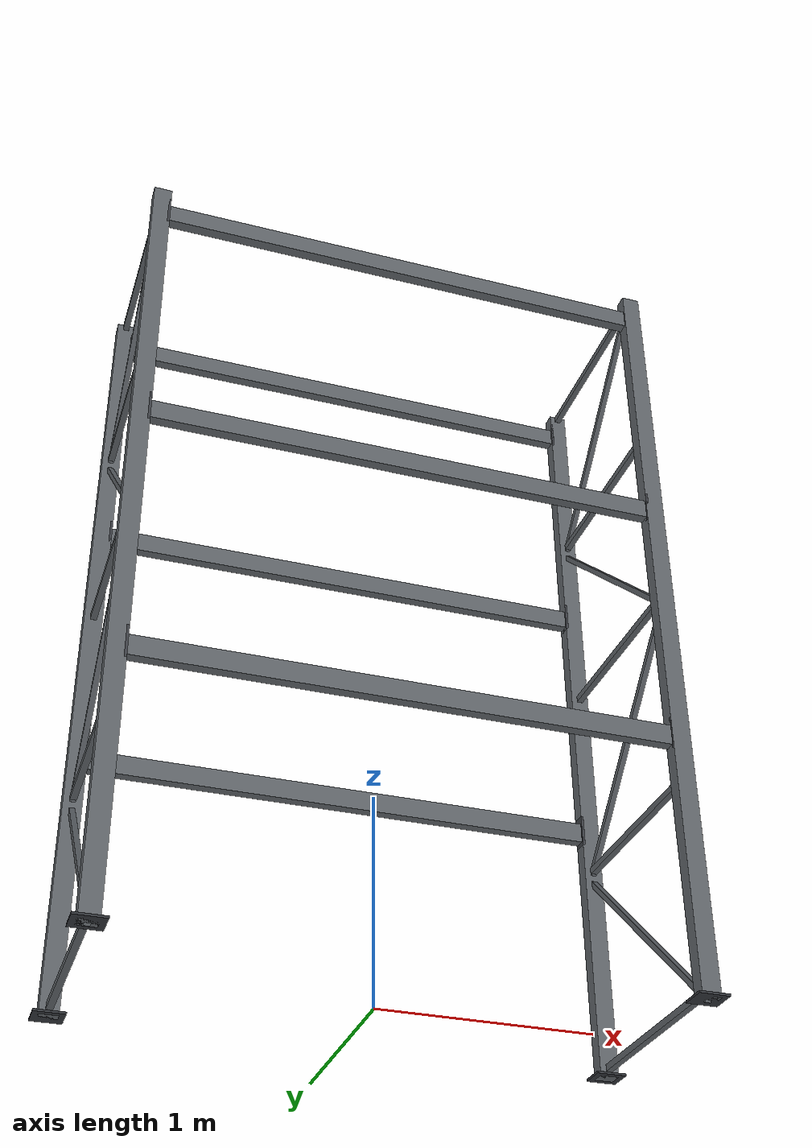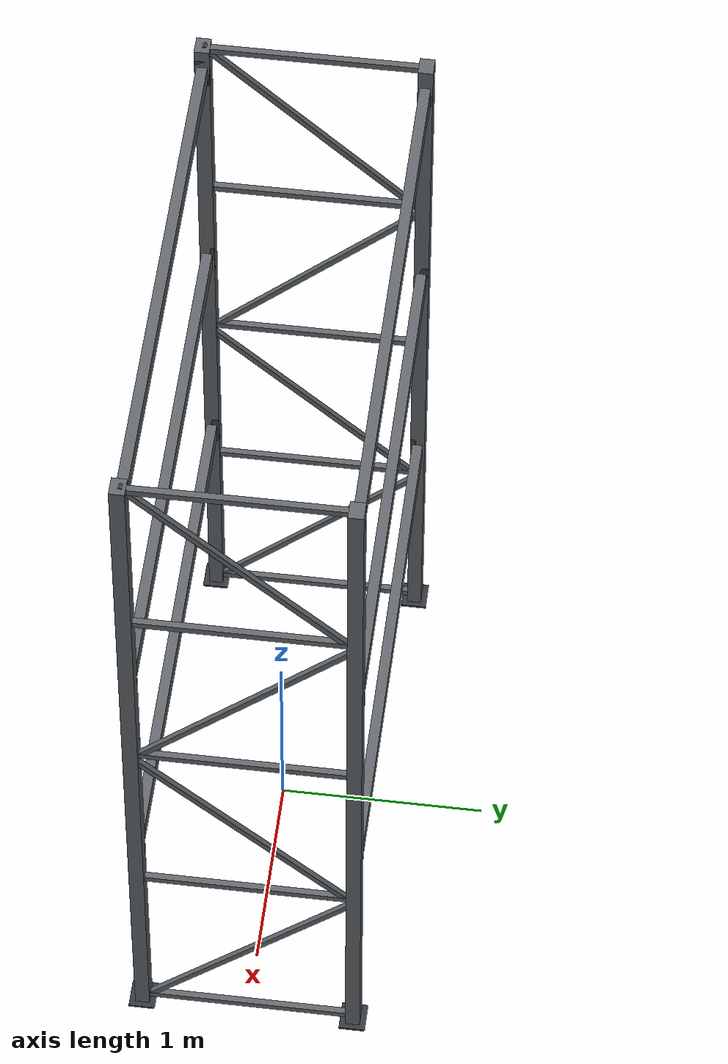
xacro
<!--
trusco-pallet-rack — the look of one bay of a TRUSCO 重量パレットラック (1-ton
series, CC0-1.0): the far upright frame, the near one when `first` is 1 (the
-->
<?xml version="1.0"?>
<robot xmlns:xacro="http://www.ros.org/wiki/xacro" name="trusco-pallet-rack-bay">
  <xacro:include filename="../../equipment-common/visual/primitives.xacro"/>
  <xacro:arg name="width" default="2.5"/>
  <xacro:arg name="depth" default="1.1"/>
  <xacro:arg name="height" default="4.0"/>
  <xacro:arg name="upright" default="0.09"/>
  <xacro:arg name="upright_depth" default="0.07"/>
  <xacro:arg name="beam" default="0.10"/>
  <xacro:arg name="first" default="1"/>
  <xacro:arg name="z1" default="1.3"/>
  <xacro:arg name="z2" default="2.6"/>
  <xacro:arg name="z3" default="3.9"/>
  <xacro:property name="w" value="$(arg width)"/>
  <xacro:property name="d" value="$(arg depth)"/>
  <xacro:property name="h" value="$(arg height)"/>
  <xacro:property name="u" value="$(arg upright)"/>
  <xacro:property name="ud" value="$(arg upright_depth)"/>
  <xacro:property name="b" value="$(arg beam)"/>
  <xacro:property name="first" value="$(arg first)"/>
  <xacro:property name="py" value="${d/2 - ud/2}"/>
  <xacro:property name="run" value="${d - ud}"/>
  <xacro:property name="panel" value="${h / 4}"/>
  <xacro:property name="brace_len" value="${hypot(run, panel)}"/>
  <xacro:property name="tilt" value="${atan2(panel, run)}"/>
  <material name="neo_grey"><color rgba="0.38 0.40 0.42 1"/></material>
  <material name="foot"><color rgba="0.20 0.21 0.23 1"/></material>
  <material name="connector"><color rgba="0.24 0.25 0.27 1"/></material>
  <link name="root"/>
  <xacro:macro name="box_r" params="name size xyz rpy mat">
    <link name="${name}"><visual><origin xyz="${xyz}" rpy="${rpy}"/>
      <geometry><box size="${size}"/></geometry><material name="${mat}"/>
    </visual></link>
    <joint name="j_${name}" type="fixed"><parent link="root"/><child link="${name}"/></joint>
  </xacro:macro>
  <!-- one upright frame at x: two posts, feet, a horizontal per panel and alternating diagonals -->
  <xacro:macro name="bracing" params="tag x i n sign">
    <xacro:if value="${i &lt; n}">
      <xacro:property name="z0" value="${panel * i}"/>
      <xacro:box name="${tag}_horizontal${i}" size="${u*0.35} ${run} ${u*0.35}" xyz="${x} 0 ${z0 + u*0.2 + 0.02}" mat="neo_grey"/>
      <xacro:box_r name="${tag}_diagonal${i}" size="${u*0.3} ${brace_len} ${u*0.3}" xyz="${x} 0 ${z0 + panel/2}"
                   rpy="${tilt * sign} 0 0" mat="neo_grey"/>
      <xacro:bracing tag="${tag}" x="${x}" i="${i+1}" n="${n}" sign="${sign * -1}"/>
    </xacro:if>
  </xacro:macro>
  <xacro:macro name="frame" params="tag x">
    <xacro:box name="${tag}_post_f" size="${u} ${ud} ${h}" xyz="${x} ${-py} ${h/2}" mat="neo_grey"/>
    <xacro:box name="${tag}_post_b" size="${u} ${ud} ${h}" xyz="${x} ${py} ${h/2}" mat="neo_grey"/>
    <xacro:box name="${tag}_foot_f" size="${u*1.6} ${ud*1.8} 0.010" xyz="${x} ${-py} 0.005" mat="foot"/>
    <xacro:box name="${tag}_foot_b" size="${u*1.6} ${ud*1.8} 0.010" xyz="${x} ${py} 0.005" mat="foot"/>
    <xacro:bracing tag="${tag}" x="${x}" i="0" n="4" sign="1"/>
    <xacro:box name="${tag}_horizontal_top" size="${u*0.35} ${run} ${u*0.35}" xyz="${x} 0 ${h - u*0.2}" mat="neo_grey"/>
  </xacro:macro>
  <xacro:frame tag="far" x="${w/2 + u/2}"/>
  <xacro:if value="${first == 1}">
    <xacro:frame tag="near" x="${-w/2 - u/2}"/>
  </xacro:if>
  <!-- a beam pair with its end connectors and lock pins -->
  <xacro:macro name="level" params="k z">
    <xacro:if value="${z &gt; 0}">
      <xacro:box name="beam${k}_f" size="${w} 0.05 ${b}" xyz="0 ${-py} ${z - b/2}" mat="neo_grey"/>
      <xacro:box name="beam${k}_b" size="${w} 0.05 ${b}" xyz="0 ${py} ${z - b/2}" mat="neo_grey"/>
      <xacro:box name="beam${k}_conn_lf" size="0.012 ${ud} ${b + 0.06}" xyz="${-w/2 - 0.006} ${-py} ${z - b/2 + 0.01}" mat="connector"/>
      <xacro:box name="beam${k}_conn_rf" size="0.012 ${ud} ${b + 0.06}" xyz="${w/2 + 0.006} ${-py} ${z - b/2 + 0.01}" mat="connector"/>
      <xacro:box name="beam${k}_conn_lb" size="0.012 ${ud} ${b + 0.06}" xyz="${-w/2 - 0.006} ${py} ${z - b/2 + 0.01}" mat="connector"/>
      <xacro:box name="beam${k}_conn_rb" size="0.012 ${ud} ${b + 0.06}" xyz="${w/2 + 0.006} ${py} ${z - b/2 + 0.01}" mat="connector"/>
    </xacro:if>
  </xacro:macro>
  <xacro:level k="1" z="$(arg z1)"/>
  <xacro:level k="2" z="$(arg z2)"/>
  <xacro:level k="3" z="$(arg z3)"/>
</robot>

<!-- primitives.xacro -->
<!-- CC0. Visual-only primitives, each with a stable removable resident name. -->
<robot xmlns:xacro="http://www.ros.org/wiki/xacro">
  <xacro:macro name="box" params="name size xyz mat">
    <link name="${name}"><visual><origin xyz="${xyz}"/>
      <geometry><box size="${size}"/></geometry><material name="${mat}"/>
    </visual></link>
    <joint name="j_${name}" type="fixed"><parent link="root"/><child link="${name}"/></joint>
  </xacro:macro>
  <xacro:macro name="cylinder" params="name radius length xyz rpy mat">
    <link name="${name}"><visual><origin xyz="${xyz}" rpy="${rpy}"/>
      <geometry><cylinder radius="${radius}" length="${length}"/></geometry><material name="${mat}"/>
    </visual></link>
    <joint name="j_${name}" type="fixed"><parent link="root"/><child link="${name}"/></joint>
  </xacro:macro>
  <xacro:macro name="mesh" params="name file xyz mat">
    <link name="${name}"><visual><origin xyz="${xyz}"/>
      <geometry><mesh filename="${file}"/></geometry><material name="${mat}"/>
    </visual></link>
    <joint name="j_${name}" type="fixed"><parent link="root"/><child link="${name}"/></joint>
  </xacro:macro>
</robot>
